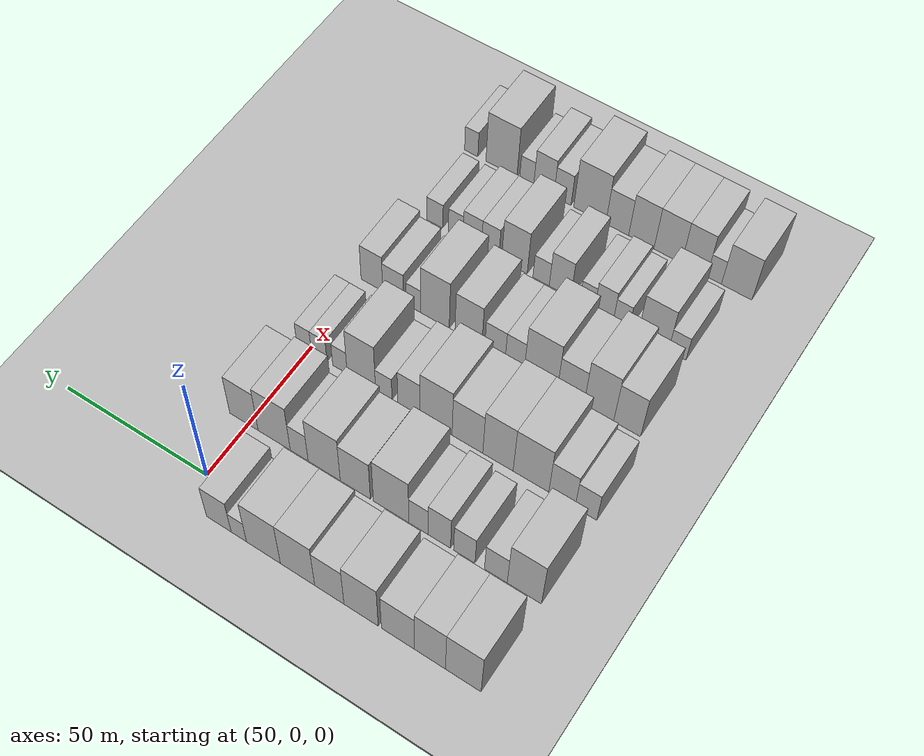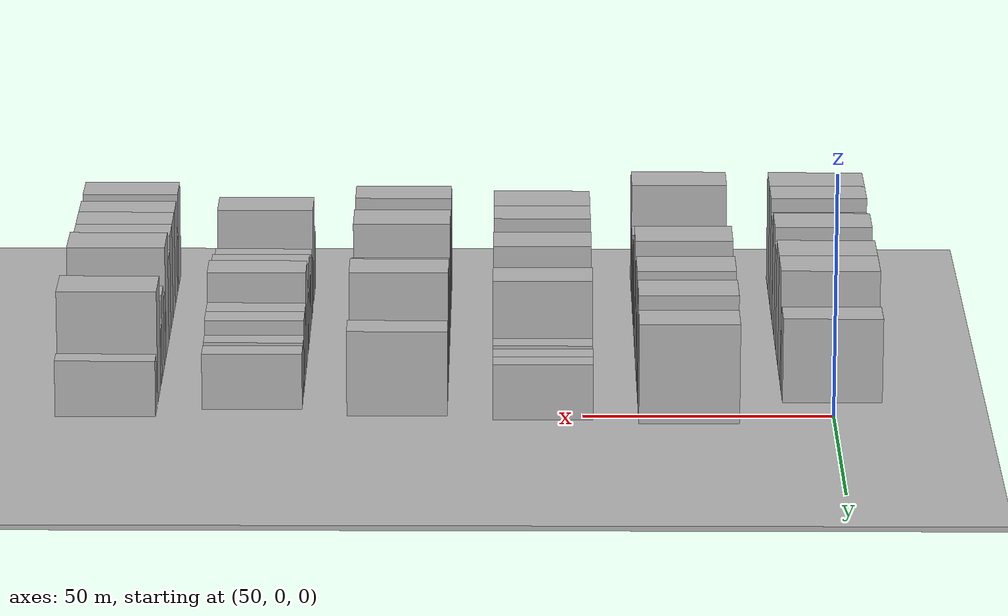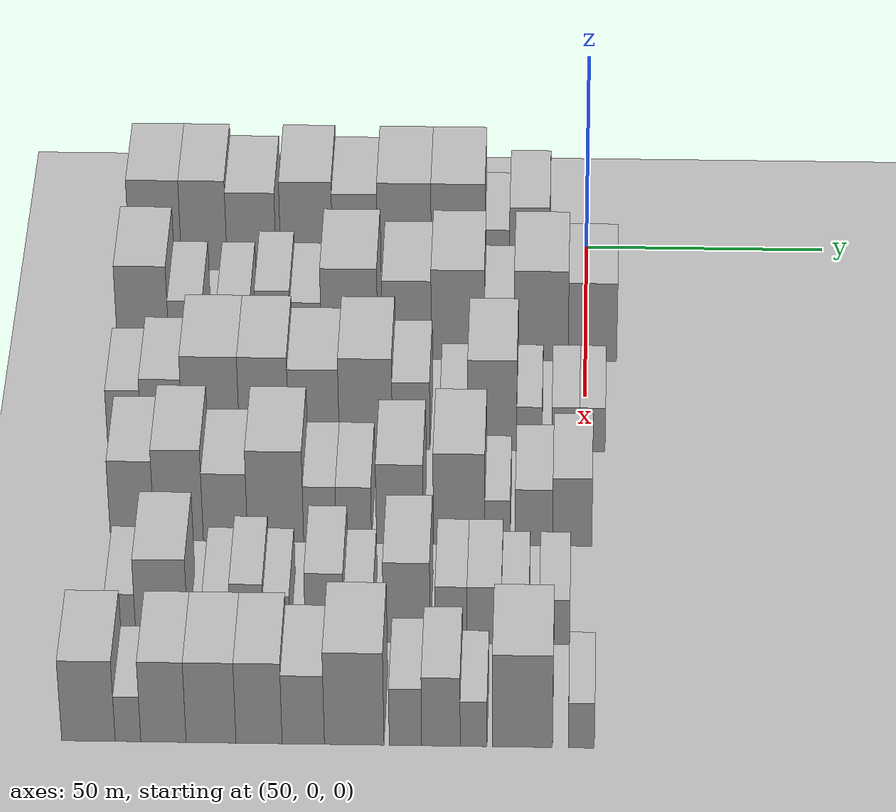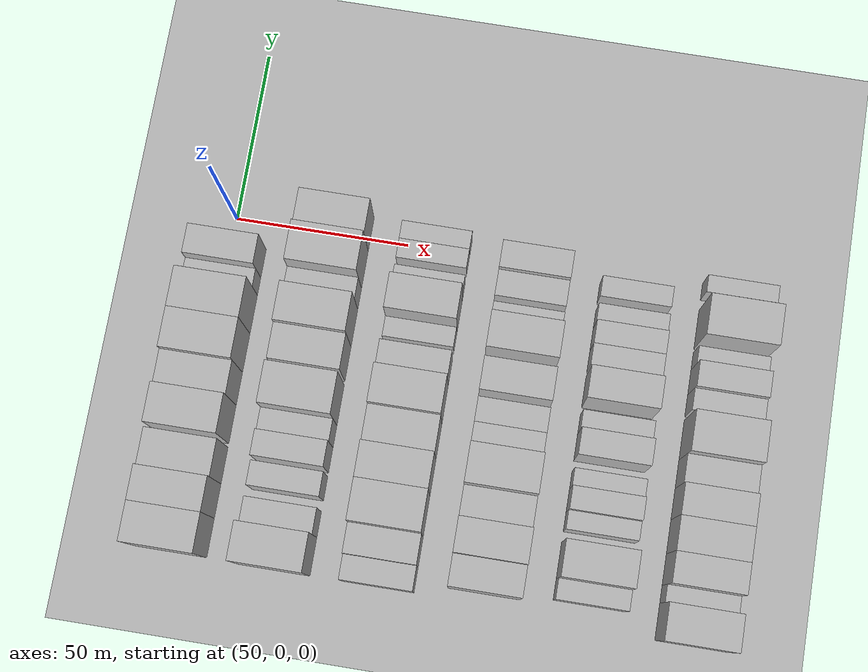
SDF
<sdf version="1.6">
 <world name="default">
  <include><name>ground_plane_1</name><uri>model://HANNAS_ground_plane</uri></include>
  <include>
   <name>ground_plane_2</name>
   <uri>model://HANNAS_ground_plane</uri>
   <pose>100 0 0  0 0 0</pose>
  </include>
  <model name="building_47">
   <static>1</static>
   <pose>50.0000 -91.0473 0 0.000000 0.000000 0.000000</pose>
   <link name="link">
    <pose>0 0 12.00 0 0 0</pose>
    <collision name="collision"><geometry><box><size>20.0000 10.9271 24.0000</size></box></geometry></collision>
    <visual name="visual">
     <cast_shadows>0</cast_shadows>
     <geometry><box><size>20.0000 10.9271 24.0000</size></box></geometry>
     <material>
      <script>
       <uri>model://HANNAS_wall/materials/scripts</uri>
       <uri>model://HANNAS_wall/materials/textures</uri>
       <name>vrc/HANNAS_wall</name>
      </script>
     </material>
    </visual>
   </link>
  </model>
  <model name="building_48">
   <static>1</static>
   <pose>50.0000 -80.7545 0 0.000000 0.000000 0.000000</pose>
   <link name="link">
    <pose>0 0 12.00 0 0 0</pose>
    <collision name="collision"><geometry><box><size>20.0000 9.6585 24.0000</size></box></geometry></collision>
    <visual name="visual">
     <cast_shadows>0</cast_shadows>
     <geometry><box><size>20.0000 9.6585 24.0000</size></box></geometry>
     <material>
      <script>
       <uri>model://HANNAS_wall/materials/scripts</uri>
       <uri>model://HANNAS_wall/materials/textures</uri>
       <name>vrc/HANNAS_wall</name>
      </script>
     </material>
    </visual>
   </link>
  </model>
  <model name="building_49">
   <static>1</static>
   <pose>50.0000 -70.7394 0 0.000000 0.000000 0.000000</pose>
   <link name="link">
    <pose>0 0 10.50 0 0 0</pose>
    <collision name="collision"><geometry><box><size>20.0000 10.3717 21.0000</size></box></geometry></collision>
    <visual name="visual">
     <cast_shadows>0</cast_shadows>
     <geometry><box><size>20.0000 10.3717 21.0000</size></box></geometry>
     <material>
      <script>
       <uri>model://HANNAS_wall/materials/scripts</uri>
       <uri>model://HANNAS_wall/materials/textures</uri>
       <name>vrc/HANNAS_wall</name>
      </script>
     </material>
    </visual>
   </link>
  </model>
  <model name="building_50">
   <static>1</static>
   <pose>50.0000 -59.0698 0 0.000000 0.000000 0.000000</pose>
   <link name="link">
    <pose>0 0 12.00 0 0 0</pose>
    <collision name="collision"><geometry><box><size>20.0000 10.9674 24.0000</size></box></geometry></collision>
    <visual name="visual">
     <cast_shadows>0</cast_shadows>
     <geometry><box><size>20.0000 10.9674 24.0000</size></box></geometry>
     <material>
      <script>
       <uri>model://HANNAS_wall/materials/scripts</uri>
       <uri>model://HANNAS_wall/materials/textures</uri>
       <name>vrc/HANNAS_wall</name>
      </script>
     </material>
    </visual>
   </link>
  </model>
  <model name="building_51">
   <static>1</static>
   <pose>50.0000 -48.8268 0 0.000000 0.000000 0.000000</pose>
   <link name="link">
    <pose>0 0 10.50 0 0 0</pose>
    <collision name="collision"><geometry><box><size>20.0000 9.5186 21.0000</size></box></geometry></collision>
    <visual name="visual">
     <cast_shadows>0</cast_shadows>
     <geometry><box><size>20.0000 9.5186 21.0000</size></box></geometry>
     <material>
      <script>
       <uri>model://HANNAS_wall/materials/scripts</uri>
       <uri>model://HANNAS_wall/materials/textures</uri>
       <name>vrc/HANNAS_wall</name>
      </script>
     </material>
    </visual>
   </link>
  </model>
  <model name="building_52">
   <static>1</static>
   <pose>50.0000 -38.4101 0 0.000000 0.000000 0.000000</pose>
   <link name="link">
    <pose>0 0 12.00 0 0 0</pose>
    <collision name="collision"><geometry><box><size>20.0000 11.3149 24.0000</size></box></geometry></collision>
    <visual name="visual">
     <cast_shadows>0</cast_shadows>
     <geometry><box><size>20.0000 11.3149 24.0000</size></box></geometry>
     <material>
      <script>
       <uri>model://HANNAS_wall/materials/scripts</uri>
       <uri>model://HANNAS_wall/materials/textures</uri>
       <name>vrc/HANNAS_wall</name>
      </script>
     </material>
    </visual>
   </link>
  </model>
  <model name="building_53">
   <static>1</static>
   <pose>50.0000 -27.0780 0 0.000000 0.000000 0.000000</pose>
   <link name="link">
    <pose>0 0 12.00 0 0 0</pose>
    <collision name="collision"><geometry><box><size>20.0000 11.3492 24.0000</size></box></geometry></collision>
    <visual name="visual">
     <cast_shadows>0</cast_shadows>
     <geometry><box><size>20.0000 11.3492 24.0000</size></box></geometry>
     <material>
      <script>
       <uri>model://HANNAS_wall/materials/scripts</uri>
       <uri>model://HANNAS_wall/materials/textures</uri>
       <name>vrc/HANNAS_wall</name>
      </script>
     </material>
    </visual>
   </link>
  </model>
  <model name="building_54">
   <static>1</static>
   <pose>50.0000 -18.8104 0 0.000000 0.000000 0.000000</pose>
   <link name="link">
    <pose>0 0 6.00 0 0 0</pose>
    <collision name="collision"><geometry><box><size>20.0000 5.1860 12.0000</size></box></geometry></collision>
    <visual name="visual">
     <cast_shadows>0</cast_shadows>
     <geometry><box><size>20.0000 5.1860 12.0000</size></box></geometry>
     <material>
      <script>
       <uri>model://HANNAS_wall/materials/scripts</uri>
       <uri>model://HANNAS_wall/materials/textures</uri>
       <name>vrc/HANNAS_wall</name>
      </script>
     </material>
    </visual>
   </link>
  </model>
  <model name="building_55">
   <static>1</static>
   <pose>50.0000 -12.0017 0 0.000000 0.000000 0.000000</pose>
   <link name="link">
    <pose>0 0 9.00 0 0 0</pose>
    <collision name="collision"><geometry><box><size>20.0000 8.4314 18.0000</size></box></geometry></collision>
    <visual name="visual">
     <cast_shadows>0</cast_shadows>
     <geometry><box><size>20.0000 8.4314 18.0000</size></box></geometry>
     <material>
      <script>
       <uri>model://HANNAS_wall/materials/scripts</uri>
       <uri>model://HANNAS_wall/materials/textures</uri>
       <name>vrc/HANNAS_wall</name>
      </script>
     </material>
    </visual>
   </link>
  </model>
  <model name="building_151">
   <static>1</static>
   <pose>79.0000 -91.5525 0 0.000000 0.000000 0.000000</pose>
   <link name="link">
    <pose>0 0 12.00 0 0 0</pose>
    <collision name="collision"><geometry><box><size>20.0000 10.6611 24.0000</size></box></geometry></collision>
    <visual name="visual">
     <cast_shadows>0</cast_shadows>
     <geometry><box><size>20.0000 10.6611 24.0000</size></box></geometry>
     <material>
      <script>
       <uri>model://HANNAS_wall/materials/scripts</uri>
       <uri>model://HANNAS_wall/materials/textures</uri>
       <name>vrc/HANNAS_wall</name>
      </script>
     </material>
    </visual>
   </link>
  </model>
  <model name="building_152">
   <static>1</static>
   <pose>79.0000 -82.6253 0 0.000000 0.000000 0.000000</pose>
   <link name="link">
    <pose>0 0 7.50 0 0 0</pose>
    <collision name="collision"><geometry><box><size>20.0000 7.1934 15.0000</size></box></geometry></collision>
    <visual name="visual">
     <cast_shadows>0</cast_shadows>
     <geometry><box><size>20.0000 7.1934 15.0000</size></box></geometry>
     <material>
      <script>
       <uri>model://HANNAS_wall/materials/scripts</uri>
       <uri>model://HANNAS_wall/materials/textures</uri>
       <name>vrc/HANNAS_wall</name>
      </script>
     </material>
    </visual>
   </link>
  </model>
  <model name="building_153">
   <static>1</static>
   <pose>79.0000 -72.6151 0 0.000000 0.000000 0.000000</pose>
   <link name="link">
    <pose>0 0 7.50 0 0 0</pose>
    <collision name="collision"><geometry><box><size>20.0000 6.8270 15.0000</size></box></geometry></collision>
    <visual name="visual">
     <cast_shadows>0</cast_shadows>
     <geometry><box><size>20.0000 6.8270 15.0000</size></box></geometry>
     <material>
      <script>
       <uri>model://HANNAS_wall/materials/scripts</uri>
       <uri>model://HANNAS_wall/materials/textures</uri>
       <name>vrc/HANNAS_wall</name>
      </script>
     </material>
    </visual>
   </link>
  </model>
  <model name="building_154">
   <static>1</static>
   <pose>79.0000 -64.5955 0 0.000000 0.000000 0.000000</pose>
   <link name="link">
    <pose>0 0 9.00 0 0 0</pose>
    <collision name="collision"><geometry><box><size>20.0000 7.2120 18.0000</size></box></geometry></collision>
    <visual name="visual">
     <cast_shadows>0</cast_shadows>
     <geometry><box><size>20.0000 7.2120 18.0000</size></box></geometry>
     <material>
      <script>
       <uri>model://HANNAS_wall/materials/scripts</uri>
       <uri>model://HANNAS_wall/materials/textures</uri>
       <name>vrc/HANNAS_wall</name>
      </script>
     </material>
    </visual>
   </link>
  </model>
  <model name="building_155">
   <static>1</static>
   <pose>79.0000 -57.8131 0 0.000000 0.000000 0.000000</pose>
   <link name="link">
    <pose>0 0 7.50 0 0 0</pose>
    <collision name="collision"><geometry><box><size>20.0000 6.3529 15.0000</size></box></geometry></collision>
    <visual name="visual">
     <cast_shadows>0</cast_shadows>
     <geometry><box><size>20.0000 6.3529 15.0000</size></box></geometry>
     <material>
      <script>
       <uri>model://HANNAS_wall/materials/scripts</uri>
       <uri>model://HANNAS_wall/materials/textures</uri>
       <name>vrc/HANNAS_wall</name>
      </script>
     </material>
    </visual>
   </link>
  </model>
  <model name="building_156">
   <static>1</static>
   <pose>79.0000 -48.8129 0 0.000000 0.000000 0.000000</pose>
   <link name="link">
    <pose>0 0 12.00 0 0 0</pose>
    <collision name="collision"><geometry><box><size>20.0000 11.6475 24.0000</size></box></geometry></collision>
    <visual name="visual">
     <cast_shadows>0</cast_shadows>
     <geometry><box><size>20.0000 11.6475 24.0000</size></box></geometry>
     <material>
      <script>
       <uri>model://HANNAS_wall/materials/scripts</uri>
       <uri>model://HANNAS_wall/materials/textures</uri>
       <name>vrc/HANNAS_wall</name>
      </script>
     </material>
    </visual>
   </link>
  </model>
  <model name="building_157">
   <static>1</static>
   <pose>79.0000 -36.9406 0 0.000000 0.000000 0.000000</pose>
   <link name="link">
    <pose>0 0 10.50 0 0 0</pose>
    <collision name="collision"><geometry><box><size>20.0000 10.0971 21.0000</size></box></geometry></collision>
    <visual name="visual">
     <cast_shadows>0</cast_shadows>
     <geometry><box><size>20.0000 10.0971 21.0000</size></box></geometry>
     <material>
      <script>
       <uri>model://HANNAS_wall/materials/scripts</uri>
       <uri>model://HANNAS_wall/materials/textures</uri>
       <name>vrc/HANNAS_wall</name>
      </script>
     </material>
    </visual>
   </link>
  </model>
  <model name="building_158">
   <static>1</static>
   <pose>79.0000 -26.4232 0 0.000000 0.000000 0.000000</pose>
   <link name="link">
    <pose>0 0 12.00 0 0 0</pose>
    <collision name="collision"><geometry><box><size>20.0000 10.9378 24.0000</size></box></geometry></collision>
    <visual name="visual">
     <cast_shadows>0</cast_shadows>
     <geometry><box><size>20.0000 10.9378 24.0000</size></box></geometry>
     <material>
      <script>
       <uri>model://HANNAS_wall/materials/scripts</uri>
       <uri>model://HANNAS_wall/materials/textures</uri>
       <name>vrc/HANNAS_wall</name>
      </script>
     </material>
    </visual>
   </link>
  </model>
  <model name="building_159">
   <static>1</static>
   <pose>79.0000 -17.8790 0 0.000000 0.000000 0.000000</pose>
   <link name="link">
    <pose>0 0 7.50 0 0 0</pose>
    <collision name="collision"><geometry><box><size>20.0000 6.1505 15.0000</size></box></geometry></collision>
    <visual name="visual">
     <cast_shadows>0</cast_shadows>
     <geometry><box><size>20.0000 6.1505 15.0000</size></box></geometry>
     <material>
      <script>
       <uri>model://HANNAS_wall/materials/scripts</uri>
       <uri>model://HANNAS_wall/materials/textures</uri>
       <name>vrc/HANNAS_wall</name>
      </script>
     </material>
    </visual>
   </link>
  </model>
  <model name="building_160">
   <static>1</static>
   <pose>79.0000 -9.2163 0 0.000000 0.000000 0.000000</pose>
   <link name="link">
    <pose>0 0 12.00 0 0 0</pose>
    <collision name="collision"><geometry><box><size>20.0000 11.1748 24.0000</size></box></geometry></collision>
    <visual name="visual">
     <cast_shadows>0</cast_shadows>
     <geometry><box><size>20.0000 11.1748 24.0000</size></box></geometry>
     <material>
      <script>
       <uri>model://HANNAS_wall/materials/scripts</uri>
       <uri>model://HANNAS_wall/materials/textures</uri>
       <name>vrc/HANNAS_wall</name>
      </script>
     </material>
    </visual>
   </link>
  </model>
  <model name="building_161">
   <static>1</static>
   <pose>79.0000 1.3822 0 0.000000 0.000000 0.000000</pose>
   <link name="link">
    <pose>0 0 10.50 0 0 0</pose>
    <collision name="collision"><geometry><box><size>20.0000 10.0221 21.0000</size></box></geometry></collision>
    <visual name="visual">
     <cast_shadows>0</cast_shadows>
     <geometry><box><size>20.0000 10.0221 21.0000</size></box></geometry>
     <material>
      <script>
       <uri>model://HANNAS_wall/materials/scripts</uri>
       <uri>model://HANNAS_wall/materials/textures</uri>
       <name>vrc/HANNAS_wall</name>
      </script>
     </material>
    </visual>
   </link>
  </model>
  <model name="building_258">
   <static>1</static>
   <pose>108.0000 -93.3540 0 0.000000 0.000000 0.000000</pose>
   <link name="link">
    <pose>0 0 7.50 0 0 0</pose>
    <collision name="collision"><geometry><box><size>20.0000 6.9047 15.0000</size></box></geometry></collision>
    <visual name="visual">
     <cast_shadows>0</cast_shadows>
     <geometry><box><size>20.0000 6.9047 15.0000</size></box></geometry>
     <material>
      <script>
       <uri>model://HANNAS_wall/materials/scripts</uri>
       <uri>model://HANNAS_wall/materials/textures</uri>
       <name>vrc/HANNAS_wall</name>
      </script>
     </material>
    </visual>
   </link>
  </model>
  <model name="building_259">
   <static>1</static>
   <pose>108.0000 -85.7097 0 0.000000 0.000000 0.000000</pose>
   <link name="link">
    <pose>0 0 9.00 0 0 0</pose>
    <collision name="collision"><geometry><box><size>20.0000 8.3839 18.0000</size></box></geometry></collision>
    <visual name="visual">
     <cast_shadows>0</cast_shadows>
     <geometry><box><size>20.0000 8.3839 18.0000</size></box></geometry>
     <material>
      <script>
       <uri>model://HANNAS_wall/materials/scripts</uri>
       <uri>model://HANNAS_wall/materials/textures</uri>
       <name>vrc/HANNAS_wall</name>
      </script>
     </material>
    </visual>
   </link>
  </model>
  <model name="building_260">
   <static>1</static>
   <pose>108.0000 -75.7421 0 0.000000 0.000000 0.000000</pose>
   <link name="link">
    <pose>0 0 12.00 0 0 0</pose>
    <collision name="collision"><geometry><box><size>20.0000 11.5514 24.0000</size></box></geometry></collision>
    <visual name="visual">
     <cast_shadows>0</cast_shadows>
     <geometry><box><size>20.0000 11.5514 24.0000</size></box></geometry>
     <material>
      <script>
       <uri>model://HANNAS_wall/materials/scripts</uri>
       <uri>model://HANNAS_wall/materials/textures</uri>
       <name>vrc/HANNAS_wall</name>
      </script>
     </material>
    </visual>
   </link>
  </model>
  <model name="building_261">
   <static>1</static>
   <pose>108.0000 -64.9852 0 0.000000 0.000000 0.000000</pose>
   <link name="link">
    <pose>0 0 12.00 0 0 0</pose>
    <collision name="collision"><geometry><box><size>20.0000 9.9624 24.0000</size></box></geometry></collision>
    <visual name="visual">
     <cast_shadows>0</cast_shadows>
     <geometry><box><size>20.0000 9.9624 24.0000</size></box></geometry>
     <material>
      <script>
       <uri>model://HANNAS_wall/materials/scripts</uri>
       <uri>model://HANNAS_wall/materials/textures</uri>
       <name>vrc/HANNAS_wall</name>
      </script>
     </material>
    </visual>
   </link>
  </model>
  <model name="building_262">
   <static>1</static>
   <pose>108.0000 -54.8782 0 0.000000 0.000000 0.000000</pose>
   <link name="link">
    <pose>0 0 10.50 0 0 0</pose>
    <collision name="collision"><geometry><box><size>20.0000 10.2515 21.0000</size></box></geometry></collision>
    <visual name="visual">
     <cast_shadows>0</cast_shadows>
     <geometry><box><size>20.0000 10.2515 21.0000</size></box></geometry>
     <material>
      <script>
       <uri>model://HANNAS_wall/materials/scripts</uri>
       <uri>model://HANNAS_wall/materials/textures</uri>
       <name>vrc/HANNAS_wall</name>
      </script>
     </material>
    </visual>
   </link>
  </model>
  <model name="building_263">
   <static>1</static>
   <pose>108.0000 -44.3606 0 0.000000 0.000000 0.000000</pose>
   <link name="link">
    <pose>0 0 12.00 0 0 0</pose>
    <collision name="collision"><geometry><box><size>20.0000 10.7838 24.0000</size></box></geometry></collision>
    <visual name="visual">
     <cast_shadows>0</cast_shadows>
     <geometry><box><size>20.0000 10.7838 24.0000</size></box></geometry>
     <material>
      <script>
       <uri>model://HANNAS_wall/materials/scripts</uri>
       <uri>model://HANNAS_wall/materials/textures</uri>
       <name>vrc/HANNAS_wall</name>
      </script>
     </material>
    </visual>
   </link>
  </model>
  <model name="building_264">
   <static>1</static>
   <pose>108.0000 -35.1720 0 0.000000 0.000000 0.000000</pose>
   <link name="link">
    <pose>0 0 9.00 0 0 0</pose>
    <collision name="collision"><geometry><box><size>20.0000 7.5935 18.0000</size></box></geometry></collision>
    <visual name="visual">
     <cast_shadows>0</cast_shadows>
     <geometry><box><size>20.0000 7.5935 18.0000</size></box></geometry>
     <material>
      <script>
       <uri>model://HANNAS_wall/materials/scripts</uri>
       <uri>model://HANNAS_wall/materials/textures</uri>
       <name>vrc/HANNAS_wall</name>
      </script>
     </material>
    </visual>
   </link>
  </model>
  <model name="building_265">
   <static>1</static>
   <pose>108.0000 -26.5373 0 0.000000 0.000000 0.000000</pose>
   <link name="link">
    <pose>0 0 6.00 0 0 0</pose>
    <collision name="collision"><geometry><box><size>20.0000 5.6760 12.0000</size></box></geometry></collision>
    <visual name="visual">
     <cast_shadows>0</cast_shadows>
     <geometry><box><size>20.0000 5.6760 12.0000</size></box></geometry>
     <material>
      <script>
       <uri>model://HANNAS_wall/materials/scripts</uri>
       <uri>model://HANNAS_wall/materials/textures</uri>
       <name>vrc/HANNAS_wall</name>
      </script>
     </material>
    </visual>
   </link>
  </model>
  <model name="building_266">
   <static>1</static>
   <pose>108.0000 -18.7496 0 0.000000 0.000000 0.000000</pose>
   <link name="link">
    <pose>0 0 12.00 0 0 0</pose>
    <collision name="collision"><geometry><box><size>20.0000 9.8994 24.0000</size></box></geometry></collision>
    <visual name="visual">
     <cast_shadows>0</cast_shadows>
     <geometry><box><size>20.0000 9.8994 24.0000</size></box></geometry>
     <material>
      <script>
       <uri>model://HANNAS_wall/materials/scripts</uri>
       <uri>model://HANNAS_wall/materials/textures</uri>
       <name>vrc/HANNAS_wall</name>
      </script>
     </material>
    </visual>
   </link>
  </model>
  <model name="building_267">
   <static>1</static>
   <pose>108.0000 -11.2522 0 0.000000 0.000000 0.000000</pose>
   <link name="link">
    <pose>0 0 6.00 0 0 0</pose>
    <collision name="collision"><geometry><box><size>20.0000 5.0952 12.0000</size></box></geometry></collision>
    <visual name="visual">
     <cast_shadows>0</cast_shadows>
     <geometry><box><size>20.0000 5.0952 12.0000</size></box></geometry>
     <material>
      <script>
       <uri>model://HANNAS_wall/materials/scripts</uri>
       <uri>model://HANNAS_wall/materials/textures</uri>
       <name>vrc/HANNAS_wall</name>
      </script>
     </material>
    </visual>
   </link>
  </model>
  <model name="building_268">
   <static>1</static>
   <pose>108.0000 -3.9146 0 0.000000 0.000000 0.000000</pose>
   <link name="link">
    <pose>0 0 6.00 0 0 0</pose>
    <collision name="collision"><geometry><box><size>20.0000 5.5800 12.0000</size></box></geometry></collision>
    <visual name="visual">
     <cast_shadows>0</cast_shadows>
     <geometry><box><size>20.0000 5.5800 12.0000</size></box></geometry>
     <material>
      <script>
       <uri>model://HANNAS_wall/materials/scripts</uri>
       <uri>model://HANNAS_wall/materials/textures</uri>
       <name>vrc/HANNAS_wall</name>
      </script>
     </material>
    </visual>
   </link>
  </model>
  <model name="building_269">
   <static>1</static>
   <pose>108.0000 1.4861 0 0.000000 0.000000 0.000000</pose>
   <link name="link">
    <pose>0 0 6.00 0 0 0</pose>
    <collision name="collision"><geometry><box><size>20.0000 5.2216 12.0000</size></box></geometry></collision>
    <visual name="visual">
     <cast_shadows>0</cast_shadows>
     <geometry><box><size>20.0000 5.2216 12.0000</size></box></geometry>
     <material>
      <script>
       <uri>model://HANNAS_wall/materials/scripts</uri>
       <uri>model://HANNAS_wall/materials/textures</uri>
       <name>vrc/HANNAS_wall</name>
      </script>
     </material>
    </visual>
   </link>
  </model>
  <model name="building_374">
   <static>1</static>
   <pose>137.0000 -89.6374 0 0.000000 0.000000 0.000000</pose>
   <link name="link">
    <pose>0 0 10.50 0 0 0</pose>
    <collision name="collision"><geometry><box><size>20.0000 8.7315 21.0000</size></box></geometry></collision>
    <visual name="visual">
     <cast_shadows>0</cast_shadows>
     <geometry><box><size>20.0000 8.7315 21.0000</size></box></geometry>
     <material>
      <script>
       <uri>model://HANNAS_wall/materials/scripts</uri>
       <uri>model://HANNAS_wall/materials/textures</uri>
       <name>vrc/HANNAS_wall</name>
      </script>
     </material>
    </visual>
   </link>
  </model>
  <model name="building_375">
   <static>1</static>
   <pose>137.0000 -80.4090 0 0.000000 0.000000 0.000000</pose>
   <link name="link">
    <pose>0 0 12.00 0 0 0</pose>
    <collision name="collision"><geometry><box><size>20.0000 9.7255 24.0000</size></box></geometry></collision>
    <visual name="visual">
     <cast_shadows>0</cast_shadows>
     <geometry><box><size>20.0000 9.7255 24.0000</size></box></geometry>
     <material>
      <script>
       <uri>model://HANNAS_wall/materials/scripts</uri>
       <uri>model://HANNAS_wall/materials/textures</uri>
       <name>vrc/HANNAS_wall</name>
      </script>
     </material>
    </visual>
   </link>
  </model>
  <model name="building_376">
   <static>1</static>
   <pose>137.0000 -71.1405 0 0.000000 0.000000 0.000000</pose>
   <link name="link">
    <pose>0 0 9.00 0 0 0</pose>
    <collision name="collision"><geometry><box><size>20.0000 8.8115 18.0000</size></box></geometry></collision>
    <visual name="visual">
     <cast_shadows>0</cast_shadows>
     <geometry><box><size>20.0000 8.8115 18.0000</size></box></geometry>
     <material>
      <script>
       <uri>model://HANNAS_wall/materials/scripts</uri>
       <uri>model://HANNAS_wall/materials/textures</uri>
       <name>vrc/HANNAS_wall</name>
      </script>
     </material>
    </visual>
   </link>
  </model>
  <model name="building_377">
   <static>1</static>
   <pose>137.0000 -61.1690 0 0.000000 0.000000 0.000000</pose>
   <link name="link">
    <pose>0 0 12.00 0 0 0</pose>
    <collision name="collision"><geometry><box><size>20.0000 11.1313 24.0000</size></box></geometry></collision>
    <visual name="visual">
     <cast_shadows>0</cast_shadows>
     <geometry><box><size>20.0000 11.1313 24.0000</size></box></geometry>
     <material>
      <script>
       <uri>model://HANNAS_wall/materials/scripts</uri>
       <uri>model://HANNAS_wall/materials/textures</uri>
       <name>vrc/HANNAS_wall</name>
      </script>
     </material>
    </visual>
   </link>
  </model>
  <model name="building_378">
   <static>1</static>
   <pose>137.0000 -52.3726 0 0.000000 0.000000 0.000000</pose>
   <link name="link">
    <pose>0 0 7.50 0 0 0</pose>
    <collision name="collision"><geometry><box><size>20.0000 6.4615 15.0000</size></box></geometry></collision>
    <visual name="visual">
     <cast_shadows>0</cast_shadows>
     <geometry><box><size>20.0000 6.4615 15.0000</size></box></geometry>
     <material>
      <script>
       <uri>model://HANNAS_wall/materials/scripts</uri>
       <uri>model://HANNAS_wall/materials/textures</uri>
       <name>vrc/HANNAS_wall</name>
      </script>
     </material>
    </visual>
   </link>
  </model>
  <model name="building_379">
   <static>1</static>
   <pose>137.0000 -45.6416 0 0.000000 0.000000 0.000000</pose>
   <link name="link">
    <pose>0 0 7.50 0 0 0</pose>
    <collision name="collision"><geometry><box><size>20.0000 7.0006 15.0000</size></box></geometry></collision>
    <visual name="visual">
     <cast_shadows>0</cast_shadows>
     <geometry><box><size>20.0000 7.0006 15.0000</size></box></geometry>
     <material>
      <script>
       <uri>model://HANNAS_wall/materials/scripts</uri>
       <uri>model://HANNAS_wall/materials/textures</uri>
       <name>vrc/HANNAS_wall</name>
      </script>
     </material>
    </visual>
   </link>
  </model>
  <model name="building_380">
   <static>1</static>
   <pose>137.0000 -36.4886 0 0.000000 0.000000 0.000000</pose>
   <link name="link">
    <pose>0 0 10.50 0 0 0</pose>
    <collision name="collision"><geometry><box><size>20.0000 9.3054 21.0000</size></box></geometry></collision>
    <visual name="visual">
     <cast_shadows>0</cast_shadows>
     <geometry><box><size>20.0000 9.3054 21.0000</size></box></geometry>
     <material>
      <script>
       <uri>model://HANNAS_wall/materials/scripts</uri>
       <uri>model://HANNAS_wall/materials/textures</uri>
       <name>vrc/HANNAS_wall</name>
      </script>
     </material>
    </visual>
   </link>
  </model>
  <model name="building_381">
   <static>1</static>
   <pose>137.0000 -24.7425 0 0.000000 0.000000 0.000000</pose>
   <link name="link">
    <pose>0 0 12.00 0 0 0</pose>
    <collision name="collision"><geometry><box><size>20.0000 10.1869 24.0000</size></box></geometry></collision>
    <visual name="visual">
     <cast_shadows>0</cast_shadows>
     <geometry><box><size>20.0000 10.1869 24.0000</size></box></geometry>
     <material>
      <script>
       <uri>model://HANNAS_wall/materials/scripts</uri>
       <uri>model://HANNAS_wall/materials/textures</uri>
       <name>vrc/HANNAS_wall</name>
      </script>
     </material>
    </visual>
   </link>
  </model>
  <model name="building_382">
   <static>1</static>
   <pose>137.0000 -17.1543 0 0.000000 0.000000 0.000000</pose>
   <link name="link">
    <pose>0 0 6.00 0 0 0</pose>
    <collision name="collision"><geometry><box><size>20.0000 4.9893 12.0000</size></box></geometry></collision>
    <visual name="visual">
     <cast_shadows>0</cast_shadows>
     <geometry><box><size>20.0000 4.9893 12.0000</size></box></geometry>
     <material>
      <script>
       <uri>model://HANNAS_wall/materials/scripts</uri>
       <uri>model://HANNAS_wall/materials/textures</uri>
       <name>vrc/HANNAS_wall</name>
      </script>
     </material>
    </visual>
   </link>
  </model>
  <model name="building_383">
   <static>1</static>
   <pose>137.0000 -9.9497 0 0.000000 0.000000 0.000000</pose>
   <link name="link">
    <pose>0 0 7.50 0 0 0</pose>
    <collision name="collision"><geometry><box><size>20.0000 7.4200 15.0000</size></box></geometry></collision>
    <visual name="visual">
     <cast_shadows>0</cast_shadows>
     <geometry><box><size>20.0000 7.4200 15.0000</size></box></geometry>
     <material>
      <script>
       <uri>model://HANNAS_wall/materials/scripts</uri>
       <uri>model://HANNAS_wall/materials/textures</uri>
       <name>vrc/HANNAS_wall</name>
      </script>
     </material>
    </visual>
   </link>
  </model>
  <model name="building_384">
   <static>1</static>
   <pose>137.0000 -2.3538 0 0.000000 0.000000 0.000000</pose>
   <link name="link">
    <pose>0 0 9.00 0 0 0</pose>
    <collision name="collision"><geometry><box><size>20.0000 7.7719 18.0000</size></box></geometry></collision>
    <visual name="visual">
     <cast_shadows>0</cast_shadows>
     <geometry><box><size>20.0000 7.7719 18.0000</size></box></geometry>
     <material>
      <script>
       <uri>model://HANNAS_wall/materials/scripts</uri>
       <uri>model://HANNAS_wall/materials/textures</uri>
       <name>vrc/HANNAS_wall</name>
      </script>
     </material>
    </visual>
   </link>
  </model>
  <model name="building_493">
   <static>1</static>
   <pose>166.0000 -89.7036 0 0.000000 0.000000 0.000000</pose>
   <link name="link">
    <pose>0 0 6.00 0 0 0</pose>
    <collision name="collision"><geometry><box><size>20.0000 5.7398 12.0000</size></box></geometry></collision>
    <visual name="visual">
     <cast_shadows>0</cast_shadows>
     <geometry><box><size>20.0000 5.7398 12.0000</size></box></geometry>
     <material>
      <script>
       <uri>model://HANNAS_wall/materials/scripts</uri>
       <uri>model://HANNAS_wall/materials/textures</uri>
       <name>vrc/HANNAS_wall</name>
      </script>
     </material>
    </visual>
   </link>
  </model>
  <model name="building_494">
   <static>1</static>
   <pose>166.0000 -81.7647 0 0.000000 0.000000 0.000000</pose>
   <link name="link">
    <pose>0 0 10.50 0 0 0</pose>
    <collision name="collision"><geometry><box><size>20.0000 10.1381 21.0000</size></box></geometry></collision>
    <visual name="visual">
     <cast_shadows>0</cast_shadows>
     <geometry><box><size>20.0000 10.1381 21.0000</size></box></geometry>
     <material>
      <script>
       <uri>model://HANNAS_wall/materials/scripts</uri>
       <uri>model://HANNAS_wall/materials/textures</uri>
       <name>vrc/HANNAS_wall</name>
      </script>
     </material>
    </visual>
   </link>
  </model>
  <model name="building_495">
   <static>1</static>
   <pose>166.0000 -71.0516 0 0.000000 0.000000 0.000000</pose>
   <link name="link">
    <pose>0 0 6.00 0 0 0</pose>
    <collision name="collision"><geometry><box><size>20.0000 5.2881 12.0000</size></box></geometry></collision>
    <visual name="visual">
     <cast_shadows>0</cast_shadows>
     <geometry><box><size>20.0000 5.2881 12.0000</size></box></geometry>
     <material>
      <script>
       <uri>model://HANNAS_wall/materials/scripts</uri>
       <uri>model://HANNAS_wall/materials/textures</uri>
       <name>vrc/HANNAS_wall</name>
      </script>
     </material>
    </visual>
   </link>
  </model>
  <model name="building_496">
   <static>1</static>
   <pose>166.0000 -65.1851 0 0.000000 0.000000 0.000000</pose>
   <link name="link">
    <pose>0 0 7.50 0 0 0</pose>
    <collision name="collision"><geometry><box><size>20.0000 6.4449 15.0000</size></box></geometry></collision>
    <visual name="visual">
     <cast_shadows>0</cast_shadows>
     <geometry><box><size>20.0000 6.4449 15.0000</size></box></geometry>
     <material>
      <script>
       <uri>model://HANNAS_wall/materials/scripts</uri>
       <uri>model://HANNAS_wall/materials/textures</uri>
       <name>vrc/HANNAS_wall</name>
      </script>
     </material>
    </visual>
   </link>
  </model>
  <model name="building_497">
   <static>1</static>
   <pose>166.0000 -59.4128 0 0.000000 0.000000 0.000000</pose>
   <link name="link">
    <pose>0 0 6.00 0 0 0</pose>
    <collision name="collision"><geometry><box><size>20.0000 5.0996 12.0000</size></box></geometry></collision>
    <visual name="visual">
     <cast_shadows>0</cast_shadows>
     <geometry><box><size>20.0000 5.0996 12.0000</size></box></geometry>
     <material>
      <script>
       <uri>model://HANNAS_wall/materials/scripts</uri>
       <uri>model://HANNAS_wall/materials/textures</uri>
       <name>vrc/HANNAS_wall</name>
      </script>
     </material>
    </visual>
   </link>
  </model>
  <model name="building_498">
   <static>1</static>
   <pose>166.0000 -50.1234 0 0.000000 0.000000 0.000000</pose>
   <link name="link">
    <pose>0 0 9.00 0 0 0</pose>
    <collision name="collision"><geometry><box><size>20.0000 7.4793 18.0000</size></box></geometry></collision>
    <visual name="visual">
     <cast_shadows>0</cast_shadows>
     <geometry><box><size>20.0000 7.4793 18.0000</size></box></geometry>
     <material>
      <script>
       <uri>model://HANNAS_wall/materials/scripts</uri>
       <uri>model://HANNAS_wall/materials/textures</uri>
       <name>vrc/HANNAS_wall</name>
      </script>
     </material>
    </visual>
   </link>
  </model>
  <model name="building_499">
   <static>1</static>
   <pose>166.0000 -43.5403 0 0.000000 0.000000 0.000000</pose>
   <link name="link">
    <pose>0 0 6.00 0 0 0</pose>
    <collision name="collision"><geometry><box><size>20.0000 5.6869 12.0000</size></box></geometry></collision>
    <visual name="visual">
     <cast_shadows>0</cast_shadows>
     <geometry><box><size>20.0000 5.6869 12.0000</size></box></geometry>
     <material>
      <script>
       <uri>model://HANNAS_wall/materials/scripts</uri>
       <uri>model://HANNAS_wall/materials/textures</uri>
       <name>vrc/HANNAS_wall</name>
      </script>
     </material>
    </visual>
   </link>
  </model>
  <model name="building_500">
   <static>1</static>
   <pose>166.0000 -34.1856 0 0.000000 0.000000 0.000000</pose>
   <link name="link">
    <pose>0 0 10.50 0 0 0</pose>
    <collision name="collision"><geometry><box><size>20.0000 9.0225 21.0000</size></box></geometry></collision>
    <visual name="visual">
     <cast_shadows>0</cast_shadows>
     <geometry><box><size>20.0000 9.0225 21.0000</size></box></geometry>
     <material>
      <script>
       <uri>model://HANNAS_wall/materials/scripts</uri>
       <uri>model://HANNAS_wall/materials/textures</uri>
       <name>vrc/HANNAS_wall</name>
      </script>
     </material>
    </visual>
   </link>
  </model>
  <model name="building_501">
   <static>1</static>
   <pose>166.0000 -25.5879 0 0.000000 0.000000 0.000000</pose>
   <link name="link">
    <pose>0 0 7.50 0 0 0</pose>
    <collision name="collision"><geometry><box><size>20.0000 6.1730 15.0000</size></box></geometry></collision>
    <visual name="visual">
     <cast_shadows>0</cast_shadows>
     <geometry><box><size>20.0000 6.1730 15.0000</size></box></geometry>
     <material>
      <script>
       <uri>model://HANNAS_wall/materials/scripts</uri>
       <uri>model://HANNAS_wall/materials/textures</uri>
       <name>vrc/HANNAS_wall</name>
      </script>
     </material>
    </visual>
   </link>
  </model>
  <model name="building_502">
   <static>1</static>
   <pose>166.0000 -19.1807 0 0.000000 0.000000 0.000000</pose>
   <link name="link">
    <pose>0 0 7.50 0 0 0</pose>
    <collision name="collision"><geometry><box><size>20.0000 6.6413 15.0000</size></box></geometry></collision>
    <visual name="visual">
     <cast_shadows>0</cast_shadows>
     <geometry><box><size>20.0000 6.6413 15.0000</size></box></geometry>
     <material>
      <script>
       <uri>model://HANNAS_wall/materials/scripts</uri>
       <uri>model://HANNAS_wall/materials/textures</uri>
       <name>vrc/HANNAS_wall</name>
      </script>
     </material>
    </visual>
   </link>
  </model>
  <model name="building_503">
   <static>1</static>
   <pose>166.0000 -13.1961 0 0.000000 0.000000 0.000000</pose>
   <link name="link">
    <pose>0 0 6.00 0 0 0</pose>
    <collision name="collision"><geometry><box><size>20.0000 5.3279 12.0000</size></box></geometry></collision>
    <visual name="visual">
     <cast_shadows>0</cast_shadows>
     <geometry><box><size>20.0000 5.3279 12.0000</size></box></geometry>
     <material>
      <script>
       <uri>model://HANNAS_wall/materials/scripts</uri>
       <uri>model://HANNAS_wall/materials/textures</uri>
       <name>vrc/HANNAS_wall</name>
      </script>
     </material>
    </visual>
   </link>
  </model>
  <model name="building_504">
   <static>1</static>
   <pose>166.0000 -5.5747 0 0.000000 0.000000 0.000000</pose>
   <link name="link">
    <pose>0 0 6.00 0 0 0</pose>
    <collision name="collision"><geometry><box><size>20.0000 5.9149 12.0000</size></box></geometry></collision>
    <visual name="visual">
     <cast_shadows>0</cast_shadows>
     <geometry><box><size>20.0000 5.9149 12.0000</size></box></geometry>
     <material>
      <script>
       <uri>model://HANNAS_wall/materials/scripts</uri>
       <uri>model://HANNAS_wall/materials/textures</uri>
       <name>vrc/HANNAS_wall</name>
      </script>
     </material>
    </visual>
   </link>
  </model>
  <model name="building_612">
   <static>1</static>
   <pose>195.0000 -93.7626 0 0.000000 0.000000 0.000000</pose>
   <link name="link">
    <pose>0 0 10.50 0 0 0</pose>
    <collision name="collision"><geometry><box><size>20.0000 10.1746 21.0000</size></box></geometry></collision>
    <visual name="visual">
     <cast_shadows>0</cast_shadows>
     <geometry><box><size>20.0000 10.1746 21.0000</size></box></geometry>
     <material>
      <script>
       <uri>model://HANNAS_wall/materials/scripts</uri>
       <uri>model://HANNAS_wall/materials/textures</uri>
       <name>vrc/HANNAS_wall</name>
      </script>
     </material>
    </visual>
   </link>
  </model>
  <model name="building_613">
   <static>1</static>
   <pose>195.0000 -86.2425 0 0.000000 0.000000 0.000000</pose>
   <link name="link">
    <pose>0 0 6.00 0 0 0</pose>
    <collision name="collision"><geometry><box><size>20.0000 4.8657 12.0000</size></box></geometry></collision>
    <visual name="visual">
     <cast_shadows>0</cast_shadows>
     <geometry><box><size>20.0000 4.8657 12.0000</size></box></geometry>
     <material>
      <script>
       <uri>model://HANNAS_wall/materials/scripts</uri>
       <uri>model://HANNAS_wall/materials/textures</uri>
       <name>vrc/HANNAS_wall</name>
      </script>
     </material>
    </visual>
   </link>
  </model>
  <model name="building_614">
   <static>1</static>
   <pose>195.0000 -79.5056 0 0.000000 0.000000 0.000000</pose>
   <link name="link">
    <pose>0 0 10.50 0 0 0</pose>
    <collision name="collision"><geometry><box><size>20.0000 8.6081 21.0000</size></box></geometry></collision>
    <visual name="visual">
     <cast_shadows>0</cast_shadows>
     <geometry><box><size>20.0000 8.6081 21.0000</size></box></geometry>
     <material>
      <script>
       <uri>model://HANNAS_wall/materials/scripts</uri>
       <uri>model://HANNAS_wall/materials/textures</uri>
       <name>vrc/HANNAS_wall</name>
      </script>
     </material>
    </visual>
   </link>
  </model>
  <model name="building_615">
   <static>1</static>
   <pose>195.0000 -70.4546 0 0.000000 0.000000 0.000000</pose>
   <link name="link">
    <pose>0 0 10.50 0 0 0</pose>
    <collision name="collision"><geometry><box><size>20.0000 9.4940 21.0000</size></box></geometry></collision>
    <visual name="visual">
     <cast_shadows>0</cast_shadows>
     <geometry><box><size>20.0000 9.4940 21.0000</size></box></geometry>
     <material>
      <script>
       <uri>model://HANNAS_wall/materials/scripts</uri>
       <uri>model://HANNAS_wall/materials/textures</uri>
       <name>vrc/HANNAS_wall</name>
      </script>
     </material>
    </visual>
   </link>
  </model>
  <model name="building_616">
   <static>1</static>
   <pose>195.0000 -61.3259 0 0.000000 0.000000 0.000000</pose>
   <link name="link">
    <pose>0 0 10.50 0 0 0</pose>
    <collision name="collision"><geometry><box><size>20.0000 8.7633 21.0000</size></box></geometry></collision>
    <visual name="visual">
     <cast_shadows>0</cast_shadows>
     <geometry><box><size>20.0000 8.7633 21.0000</size></box></geometry>
     <material>
      <script>
       <uri>model://HANNAS_wall/materials/scripts</uri>
       <uri>model://HANNAS_wall/materials/textures</uri>
       <name>vrc/HANNAS_wall</name>
      </script>
     </material>
    </visual>
   </link>
  </model>
  <model name="building_617">
   <static>1</static>
   <pose>195.0000 -52.9336 0 0.000000 0.000000 0.000000</pose>
   <link name="link">
    <pose>0 0 9.00 0 0 0</pose>
    <collision name="collision"><geometry><box><size>20.0000 8.0213 18.0000</size></box></geometry></collision>
    <visual name="visual">
     <cast_shadows>0</cast_shadows>
     <geometry><box><size>20.0000 8.0213 18.0000</size></box></geometry>
     <material>
      <script>
       <uri>model://HANNAS_wall/materials/scripts</uri>
       <uri>model://HANNAS_wall/materials/textures</uri>
       <name>vrc/HANNAS_wall</name>
      </script>
     </material>
    </visual>
   </link>
  </model>
  <model name="building_618">
   <static>1</static>
   <pose>195.0000 -43.2580 0 0.000000 0.000000 0.000000</pose>
   <link name="link">
    <pose>0 0 12.00 0 0 0</pose>
    <collision name="collision"><geometry><box><size>20.0000 11.3299 24.0000</size></box></geometry></collision>
    <visual name="visual">
     <cast_shadows>0</cast_shadows>
     <geometry><box><size>20.0000 11.3299 24.0000</size></box></geometry>
     <material>
      <script>
       <uri>model://HANNAS_wall/materials/scripts</uri>
       <uri>model://HANNAS_wall/materials/textures</uri>
       <name>vrc/HANNAS_wall</name>
      </script>
     </material>
    </visual>
   </link>
  </model>
  <model name="building_619">
   <static>1</static>
   <pose>195.0000 -33.5188 0 0.000000 0.000000 0.000000</pose>
   <link name="link">
    <pose>0 0 7.50 0 0 0</pose>
    <collision name="collision"><geometry><box><size>20.0000 6.1483 15.0000</size></box></geometry></collision>
    <visual name="visual">
     <cast_shadows>0</cast_shadows>
     <geometry><box><size>20.0000 6.1483 15.0000</size></box></geometry>
     <material>
      <script>
       <uri>model://HANNAS_wall/materials/scripts</uri>
       <uri>model://HANNAS_wall/materials/textures</uri>
       <name>vrc/HANNAS_wall</name>
      </script>
     </material>
    </visual>
   </link>
  </model>
  <model name="building_620">
   <static>1</static>
   <pose>195.0000 -26.7877 0 0.000000 0.000000 0.000000</pose>
   <link name="link">
    <pose>0 0 9.00 0 0 0</pose>
    <collision name="collision"><geometry><box><size>20.0000 7.3140 18.0000</size></box></geometry></collision>
    <visual name="visual">
     <cast_shadows>0</cast_shadows>
     <geometry><box><size>20.0000 7.3140 18.0000</size></box></geometry>
     <material>
      <script>
       <uri>model://HANNAS_wall/materials/scripts</uri>
       <uri>model://HANNAS_wall/materials/textures</uri>
       <name>vrc/HANNAS_wall</name>
      </script>
     </material>
    </visual>
   </link>
  </model>
  <model name="building_621">
   <static>1</static>
   <pose>195.0000 -20.5906 0 0.000000 0.000000 0.000000</pose>
   <link name="link">
    <pose>0 0 6.00 0 0 0</pose>
    <collision name="collision"><geometry><box><size>20.0000 5.0801 12.0000</size></box></geometry></collision>
    <visual name="visual">
     <cast_shadows>0</cast_shadows>
     <geometry><box><size>20.0000 5.0801 12.0000</size></box></geometry>
     <material>
      <script>
       <uri>model://HANNAS_wall/materials/scripts</uri>
       <uri>model://HANNAS_wall/materials/textures</uri>
       <name>vrc/HANNAS_wall</name>
      </script>
     </material>
    </visual>
   </link>
  </model>
  <model name="building_622">
   <static>1</static>
   <pose>195.0000 -11.3370 0 0.000000 0.000000 0.000000</pose>
   <link name="link">
    <pose>0 0 12.00 0 0 0</pose>
    <collision name="collision"><geometry><box><size>20.0000 11.4269 24.0000</size></box></geometry></collision>
    <visual name="visual">
     <cast_shadows>0</cast_shadows>
     <geometry><box><size>20.0000 11.4269 24.0000</size></box></geometry>
     <material>
      <script>
       <uri>model://HANNAS_wall/materials/scripts</uri>
       <uri>model://HANNAS_wall/materials/textures</uri>
       <name>vrc/HANNAS_wall</name>
      </script>
     </material>
    </visual>
   </link>
  </model>
  <model name="building_623">
   <static>1</static>
   <pose>195.0000 -0.1516 0 0.000000 0.000000 0.000000</pose>
   <link name="link">
    <pose>0 0 6.00 0 0 0</pose>
    <collision name="collision"><geometry><box><size>20.0000 4.9439 12.0000</size></box></geometry></collision>
    <visual name="visual">
     <cast_shadows>0</cast_shadows>
     <geometry><box><size>20.0000 4.9439 12.0000</size></box></geometry>
     <material>
      <script>
       <uri>model://HANNAS_wall/materials/scripts</uri>
       <uri>model://HANNAS_wall/materials/textures</uri>
       <name>vrc/HANNAS_wall</name>
      </script>
     </material>
    </visual>
   </link>
  </model>
 </world>
</sdf>
